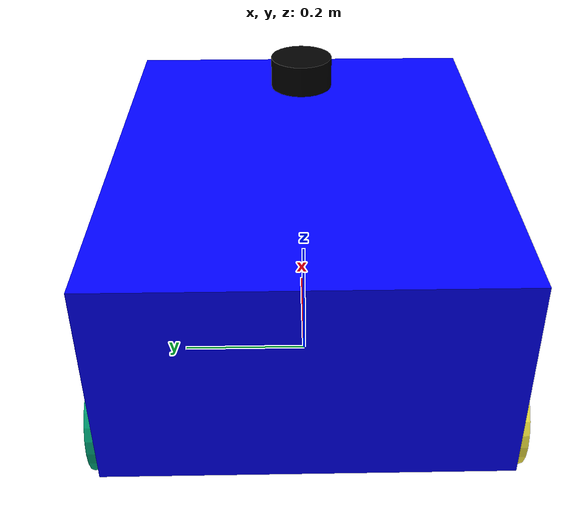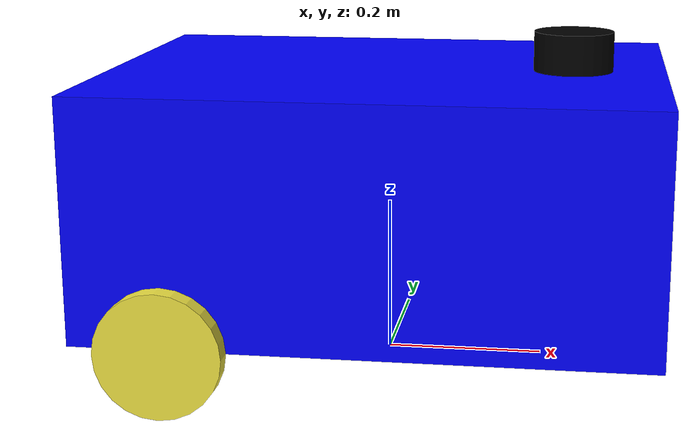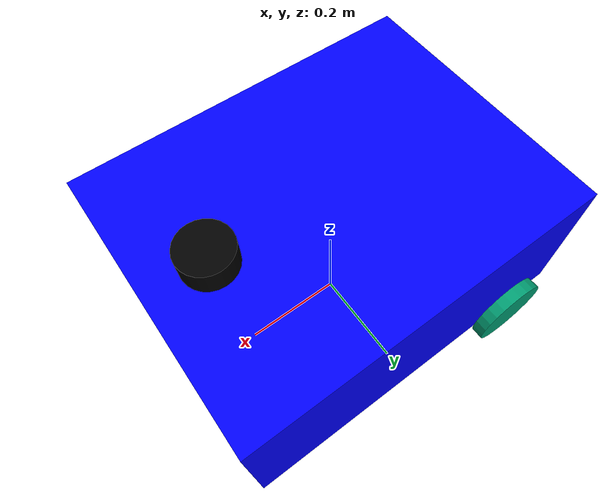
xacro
<?xml version="1.0"?>
<robot xmlns:xacro="http://www.ros.org/wiki/xacro" name="my_robot">

  <!-- Definire parametri -->
  <xacro:property name="robot_length" value="0.7"/>
  <xacro:property name="robot_width" value="0.55"/>
  <xacro:property name="robot_height" value="0.3"/>
  <xacro:property name="wheel_diameter" value="0.155"/>
  <xacro:property name="wheel_thickness" value="0.025"/>
  <xacro:property name="wheel_radius" value="${wheel_diameter / 2}"/>
  <xacro:property name="caster_wheel_radius" value="${wheel_diameter / 4}"/>
  <xacro:property name="wheel_offset_x" value="${-(robot_length / 3)}"/>
  <xacro:property name="caster_offset_x" value="${(robot_length / 3)}"/>
  <xacro:property name="wheel_z_offset" value="${wheel_radius}"/>
  <xacro:property name="wheel_y_offset" value="${(robot_width / 2) + (wheel_thickness / 2)}"/>
  <xacro:property name="lidar_height" value="0.05"/>
  <xacro:property name="lidar_diameter" value="0.1"/>

  <!-- Base footprint: proiecția pe sol -->
  <link name="base_footprint"/>

  <!-- Base link: corpul principal al robotului -->
  <link name="base_link">
    <visual>
      <origin xyz="0 0 ${robot_height / 2}" rpy="0 0 0"/>
      <geometry>
        <box size="${robot_length} ${robot_width} ${robot_height}"/>
      </geometry>
      <material name="blue">
        <color rgba="0 0 1 1"/>
      </material>
    </visual>
    <collision>
      <origin xyz="0 0 ${robot_height / 2}" rpy="0 0 0"/>
      <geometry>
        <box size="${robot_length} ${robot_width} ${robot_height}"/>
      </geometry>
    </collision>
    <inertial>
      <origin xyz="0 0 ${robot_height / 2}" rpy="0 0 0"/>
      <mass value="3.95"/>
      <inertia ixx="${(1/12) * 3.95 * (robot_width * robot_width + robot_height * robot_height)}" ixy="0" ixz="0"
               iyy="${(1/12) * 3.95 * (robot_length * robot_length + robot_height * robot_height)}" iyz="0"
               izz="${(1/12) * 3.95 * (robot_length * robot_length + robot_width * robot_width)}"/>
    </inertial>
  </link>

  <!-- Legătura dintre base_footprint și base_link -->
  <joint name="base_footprint_to_base_link" type="fixed">
    <parent link="base_footprint"/>
    <child link="base_link"/>
    <origin xyz="0 0 ${wheel_radius}" rpy="0 0 0"/>
  </joint>

  <!-- Roata stângă -->
  <link name="left_wheel">
    <visual>
      <origin xyz="0 0 0" rpy="-1.5708 0 0"/>
      <geometry>
        <cylinder length="${wheel_thickness}" radius="${wheel_radius}"/>
      </geometry>
    </visual>
    <collision>
      <origin xyz="0 0 0" rpy="-1.5708 0 0"/>
      <geometry>
        <cylinder length="${wheel_thickness}" radius="${wheel_radius}"/>
      </geometry>
    </collision>
    <inertial>
      <origin xyz="0 0 0" rpy="-1.5708 0 0"/>
      <mass value="0.4"/>
      <inertia ixx="${(1/2) * 0.4 * wheel_radius * wheel_radius}" ixy="0" ixz="0"
               iyy="${(1/2) * 0.4 * wheel_radius * wheel_radius}" iyz="0"
               izz="${0.4 * wheel_radius * wheel_radius}"/>
    </inertial>
  </link>

  <joint name="base_to_left_wheel" type="continuous">
    <parent link="base_link"/>
    <child link="left_wheel"/>
    <origin xyz="${wheel_offset_x} ${wheel_y_offset} 0" rpy="0 0 0"/>
    <axis xyz="0 1 0"/>
  </joint>

  <!-- Roata dreaptă -->
  <link name="right_wheel">
    <visual>
      <origin xyz="0 0 0" rpy="-1.5708 0 0"/>
      <geometry>
        <cylinder length="${wheel_thickness}" radius="${wheel_radius}"/>
      </geometry>
    </visual>
    <collision>
      <origin xyz="0 0 0" rpy="-1.5708 0 0"/>
      <geometry>
        <cylinder length="${wheel_thickness}" radius="${wheel_radius}"/>
      </geometry>
    </collision>
    <inertial>
      <origin xyz="0 0 0" rpy="-1.5708 0 0"/>
      <mass value="0.4"/>
      <inertia ixx="${(1/2) * 0.4 * wheel_radius * wheel_radius}" ixy="0" ixz="0"
               iyy="${(1/2) * 0.4 * wheel_radius * wheel_radius}" iyz="0"
               izz="${0.4 * wheel_radius * wheel_radius}"/>
    </inertial>
  </link>

  <joint name="base_to_right_wheel" type="continuous">
    <parent link="base_link"/>
    <child link="right_wheel"/>
    <origin xyz="${wheel_offset_x} -${wheel_y_offset} 0" rpy="0 0 0"/>
    <axis xyz="0 1 0"/>
  </joint>

    <!-- Caster wheel -->
  <link name="caster_wheel">
    <visual>
      <origin xyz="0 0 0" rpy="0 0 0"/>
      <geometry>
        <sphere radius="${caster_wheel_radius}"/>
      </geometry>
      <material name="black">
        <color rgba="0 0 0 1"/>
      </material>
    </visual>
    <collision>
      <origin xyz="0 0 0" rpy="0 0 0"/>
      <geometry>
        <sphere radius="${caster_wheel_radius}"/>
      </geometry>
    </collision>
    <inertial>
      <origin xyz="0 0 0" rpy="0 0 0"/>
      <mass value="0.25"/>
      <inertia ixx="${(2/5) * 0.25 * caster_wheel_radius * caster_wheel_radius}" ixy="0" ixz="0"
               iyy="${(2/5) * 0.25 * caster_wheel_radius * caster_wheel_radius}" iyz="0"
               izz="${(2/5) * 0.25 * caster_wheel_radius * caster_wheel_radius}"/>
    </inertial>
  </link>

  <!-- Joint pentru caster wheel -->
  <joint name="base_to_caster_wheel" type="fixed">
    <parent link="base_link"/>
    <child link="caster_wheel"/>
    <origin xyz="${caster_offset_x} 0 -${caster_wheel_radius}" rpy="0 0 0"/>
  </joint>

  <!-- Lidar link -->
  <link name="lidar_link">
    <visual>
      <origin xyz="0 0 0" rpy="0 0 0"/>
      <geometry>
        <cylinder length="${lidar_height}" radius="${lidar_diameter / 2}"/>
      </geometry>
      <material name="black">
        <color rgba="0 0 0 1"/>
      </material>
    </visual>
    <collision>
      <origin xyz="0 0 0" rpy="0 0 0"/>
      <geometry>
        <cylinder length="${wheel_thickness}" radius="${wheel_radius}"/>
      </geometry>
    </collision>
    <inertial>
      <origin xyz="0 0 0" rpy="0 0 0"/>
      <mass value="0.4"/>
      <inertia ixx="${(1/2) * 0.4 * wheel_radius * wheel_radius}" ixy="0" ixz="0"
               iyy="${(1/2) * 0.4 * wheel_radius * wheel_radius}" iyz="0"
               izz="${0.4 * wheel_radius * wheel_radius}"/>
    </inertial>
  </link>

  <joint name="base_to_lidar" type="fixed">
    <parent link="base_link"/>
    <child link="lidar_link"/>
    <origin xyz="${caster_offset_x} 0 ${robot_height + lidar_height/2}" rpy="0 0 0"/>
    <axis xyz="0 0 1"/>
  </joint>

</robot>
